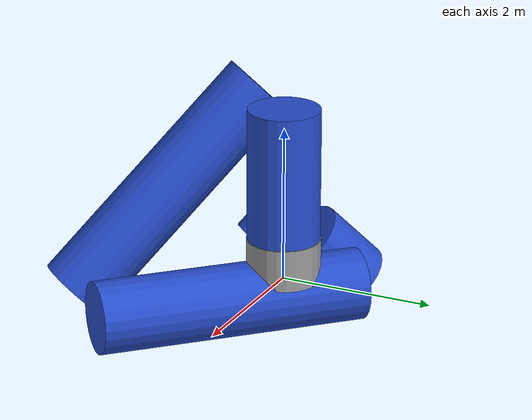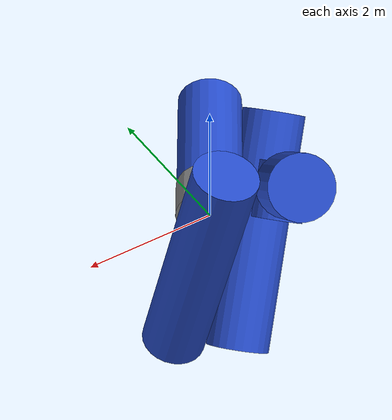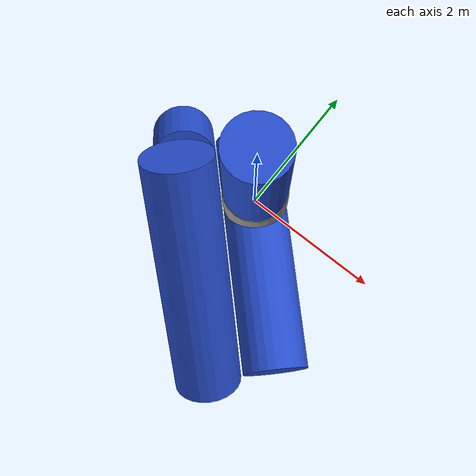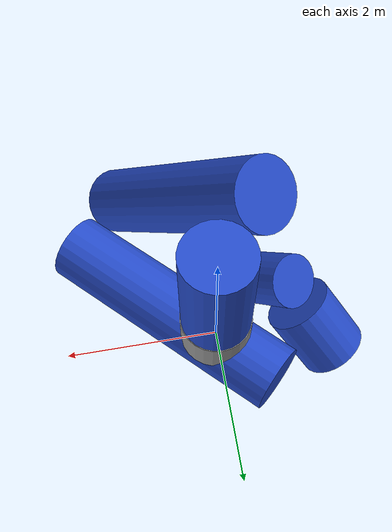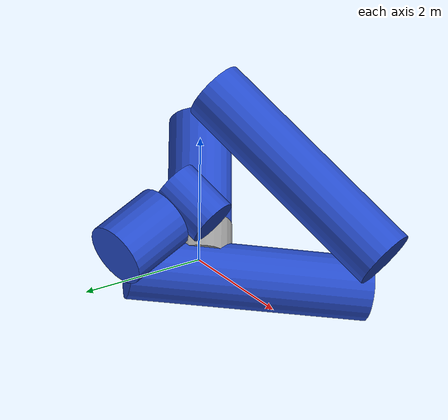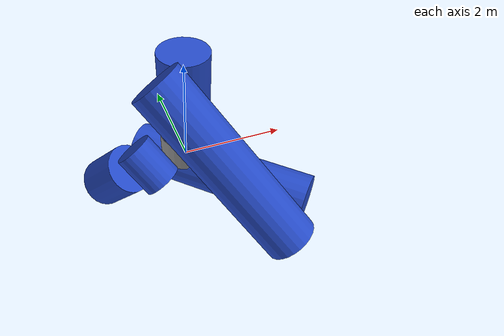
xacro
<?xml version="1.0"?>
<robot xmlns:xacro="http://www.ros.org/wiki/xacro">

    <link name="base_link">
        <visual>
            <geometry>
                <cylinder radius="0.475" length="0.547"/>
            </geometry>
            <origin xyz = "0 0 0.2735   " rpy="0 0 0"/>
            <material name="grey"/>
        </visual>
        <collision>
            <geometry>
                <box size="0.9605 0.9605 0.547"/>
            </geometry>
            <origin xyz = "0 0 0.2735" rpy="0 0 0"/>
        </collision>
    </link>

    <link name="link1">
        <visual>
            <geometry>
                <cylinder radius="0.465" length="1.72"/>
            </geometry>
            <origin xyz = "0 0 0.86" rpy="0 0 0"/>
            <material name="blue"/>
        </visual>
        <collision>
            <geometry>
                <cylinder radius="0.465" length="1.72"/>
            </geometry>
            <origin xyz = "0 0 0.86" rpy="0 0 0"/>
        </collision>
    </link>

    <link name="link2">
        <visual>
            <geometry>
                <cylinder radius="0.465" length="3.5"/>
            </geometry>
            <origin xyz = "0 0 1.75" rpy="0 0 0"/>
            <material name="blue"/>
        </visual>
        <collision>
            <geometry>
                <cylinder radius="0.465" length="3.5"/>
            </geometry>
            <origin xyz = "0 0 1.75" rpy="0 0 0"/>
        </collision>
    </link>

    <link name="link3">
        <visual>
            <geometry>
                <cylinder radius="0.465" length="3.5"/>
            </geometry>
            <origin xyz = "0 0 1.75" rpy="0 0 0"/>
            <material name="blue"/>
        </visual>
        <collision>
            <geometry>
                <cylinder radius="0.465" length="3.5"/>
            </geometry>
            <origin xyz = "0 0 1.75" rpy="0 0 0"/>
        </collision>
    </link>

    <link name="link4"/>
`
    <link name="link5">
        <visual>
            <geometry>
                <cylinder radius="0.465" length="0.95"/>
            </geometry>
            <origin xyz = "0 0 -0.475" rpy="0 0 0"/>
            <material name="blue"/>
        </visual>
        <collision>
            <geometry>
                <cylinder radius="0.465" length="0.95"/>
            </geometry>
            <origin xyz = "0 0 -0.475" rpy="0 0 0"/>
        </collision>
    </link>

    <link name="link6">
        <visual>
            <geometry>
                <cylinder radius="0.36" length="0.8"/>
            </geometry>
            <origin xyz = "0.1 0 0" rpy="0 1.57 0"/>
            <material name="blue"/>
        </visual>
        <collision>
            <geometry>
                <cylinder radius="0.36" length="0.8"/>
            </geometry>
            <origin xyz = "0.1 0 0" rpy="0 1.57 0"/>
        </collision>
    </link>

    <link name="tool_link"/>

    <joint name="joint1" type="revolute">
        <parent link="base_link"/>
        <child link="link1"/>
        <origin xyz="0 0 0.547" rpy="0 0 -2.355"/>
        <axis xyz="0 0 1"/>
        <limit lower="0" upper="4.710" effort="1000.0" velocity="1.0"/>
    </joint>

    <joint name="joint2" type="revolute">
        <parent link="link1"/>
        <child link="link2"/>
        <origin xyz="0.9605 0 1.72" rpy="-2.355 0 0"/>
        <axis xyz="1 0 0"/>
        <limit lower="0" upper="4.710" effort="1000.0" velocity="1.0"/>
    </joint>

    <joint name="joint3" type="revolute">
        <parent link="link2"/>
        <child link="link3"/>
        <origin xyz="-0.9580 0 3.5" rpy="-2.355 0 0"/>
        <axis xyz="1 0 0"/>
        <limit lower="0" upper="4.710" effort="1000.0" velocity="1.0"/>
    </joint>

    <joint name="joint4" type="revolute">
        <parent link="link3"/>
        <child link="link4"/>
        <origin xyz="0.95 0 3.5" rpy="-2.355 0 0"/>
        <axis xyz="1 0 0"/>
        <limit lower="0" upper="4.710" effort="1000.0" velocity="1.0"/>
    </joint>

    <joint name="joint5" type="revolute">
        <parent link="link4"/>
        <child link="link5"/>
        <origin xyz="0 0 0.475" rpy="0 0 1.57"/>
        <axis xyz="0 0 -1"/>
        <limit lower="0" upper="3.14" effort="1000.0" velocity="1.0"/>
    </joint>

    <joint name="joint6" type="revolute">
        <parent link="link5"/>
        <child link="link6"/>
        <origin xyz="0 0 0.475" rpy="0 0 0"/>
        <axis xyz="1 0 0"/>
        <limit lower="0" upper="3.14" effort="1000.0" velocity="1.0"/>
    </joint>

    <joint name="hand_tool_joint" type="fixed">
        <parent link="link6"/>
        <child link="tool_link"/>
        <origin xyz="3.0 0 0" rpy="0 1.57 0"/>
    </joint>

</robot>
